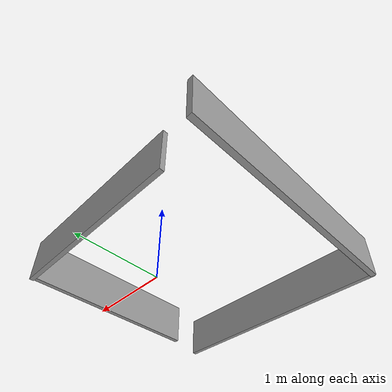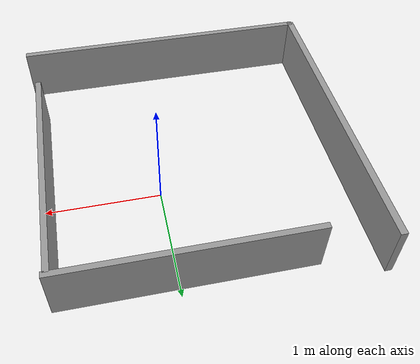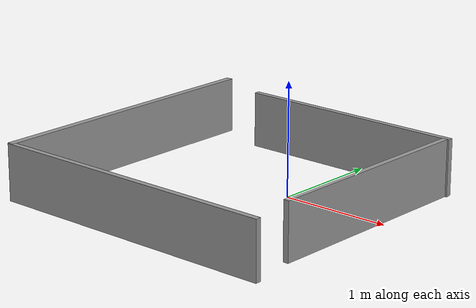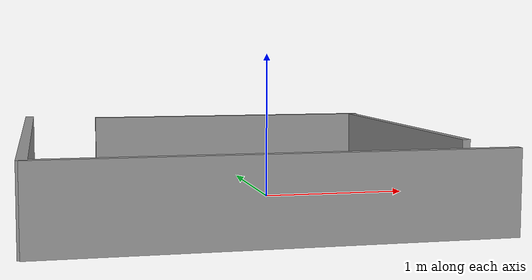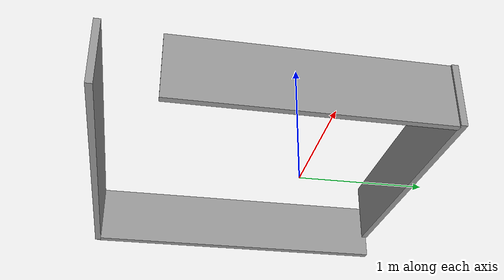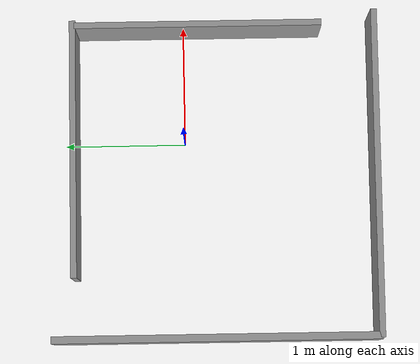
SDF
<?xml version='1.0'?>
<sdf version='1.6'>
  <model name='tunnel_wall_waffle'>
    <link name='Wall_12'>
      <pose frame=''>-1.63568 -0.243892 0 0 -0 1.5708</pose>
      <inertial>
        <inertia>
          <ixx>nan</ixx>
          <ixy>0</ixy>
          <ixz>0</ixz>
          <iyy>nan</iyy>
          <iyz>0</iyz>
          <izz>nan</izz>
        </inertia>
        <mass>0</mass>
        <pose frame=''>0 0 0 0 -0 0</pose>
      </inertial>
      <self_collide>0</self_collide>
      <kinematic>0</kinematic>
      <visual name='Wall_12_Visual'>
        <pose frame=''>0 0 0.25 0 -0 0</pose>
        <geometry>
          <box>
            <size>2.68372 0.060546 0.5</size>
          </box>
        </geometry>
        <material>
          <script>
            <uri>file://media/materials/scripts/gazebo.material</uri>
            <name>Gazebo/Grey</name>
          </script>
          <ambient>1 1 1 1</ambient>
          <diffuse>0.7 0.7 0.7 1</diffuse>
          <specular>0.01 0.01 0.01 1</specular>
          <emissive>0 0 0 1</emissive>
        </material>
        <cast_shadows>1</cast_shadows>
        <transparency>0</transparency>
      </visual>
      <collision name='Wall_12_Collision'>
        <laser_retro>0</laser_retro>
        <max_contacts>10</max_contacts>
        <pose frame=''>0 0 0.25 0 -0 0</pose>
        <geometry>
          <box>
            <size>2.68372 0.060546 0.5</size>
          </box>
        </geometry>
        <surface>
          <friction>
            <ode>
              <mu>1</mu>
              <mu2>1</mu2>
              <fdir1>0 0 0</fdir1>
              <slip1>0</slip1>
              <slip2>0</slip2>
            </ode>
            <torsional>
              <coefficient>1</coefficient>
              <patch_radius>0</patch_radius>
              <surface_radius>0</surface_radius>
              <use_patch_radius>1</use_patch_radius>
              <ode>
                <slip>0</slip>
              </ode>
            </torsional>
          </friction>
          <bounce>
            <restitution_coefficient>0</restitution_coefficient>
            <threshold>1e+06</threshold>
          </bounce>
          <contact>
            <collide_without_contact>0</collide_without_contact>
            <collide_without_contact_bitmask>1</collide_without_contact_bitmask>
            <collide_bitmask>1</collide_bitmask>
            <ode>
              <soft_cfm>0</soft_cfm>
              <soft_erp>0.2</soft_erp>
              <kp>1e+13</kp>
              <kd>1</kd>
              <max_vel>0.01</max_vel>
              <min_depth>0</min_depth>
            </ode>
            <bullet>
              <split_impulse>1</split_impulse>
              <split_impulse_penetration_threshold>-0.01</split_impulse_penetration_threshold>
              <soft_cfm>0</soft_cfm>
              <soft_erp>0.2</soft_erp>
              <kp>1e+13</kp>
              <kd>1</kd>
            </bullet>
          </contact>
        </surface>
      </collision>
    </link>
    <link name='Wall_14'>
      <pose frame=''>-0.304035 -1.57485 0 0 -0 0</pose>
      <inertial>
        <inertia>
          <ixx>nan</ixx>
          <ixy>0</ixy>
          <ixz>0</ixz>
          <iyy>nan</iyy>
          <iyz>0</iyz>
          <izz>nan</izz>
        </inertia>
        <mass>0</mass>
        <pose frame=''>0 0 0 0 -0 0</pose>
      </inertial>
      <self_collide>0</self_collide>
      <kinematic>0</kinematic>
      <visual name='Wall_14_Visual'>
        <pose frame=''>0 0 0.25 0 -0 0</pose>
        <geometry>
          <box>
            <size>2.69628 0.05 0.5</size>
          </box>
        </geometry>
        <material>
          <script>
            <uri>file://media/materials/scripts/gazebo.material</uri>
            <name>Gazebo/Grey</name>
          </script>
          <ambient>1 1 1 1</ambient>
          <diffuse>0.7 0.7 0.7 1</diffuse>
          <specular>0.01 0.01 0.01 1</specular>
          <emissive>0 0 0 1</emissive>
        </material>
        <cast_shadows>1</cast_shadows>
        <transparency>0</transparency>
      </visual>
      <collision name='Wall_14_Collision'>
        <laser_retro>0</laser_retro>
        <max_contacts>10</max_contacts>
        <pose frame=''>0 0 0.25 0 -0 0</pose>
        <geometry>
          <box>
            <size>2.69628 0.05 0.5</size>
          </box>
        </geometry>
        <surface>
          <friction>
            <ode>
              <mu>1</mu>
              <mu2>1</mu2>
              <fdir1>0 0 0</fdir1>
              <slip1>0</slip1>
              <slip2>0</slip2>
            </ode>
            <torsional>
              <coefficient>1</coefficient>
              <patch_radius>0</patch_radius>
              <surface_radius>0</surface_radius>
              <use_patch_radius>1</use_patch_radius>
              <ode>
                <slip>0</slip>
              </ode>
            </torsional>
          </friction>
          <bounce>
            <restitution_coefficient>0</restitution_coefficient>
            <threshold>1e+06</threshold>
          </bounce>
          <contact>
            <collide_without_contact>0</collide_without_contact>
            <collide_without_contact_bitmask>1</collide_without_contact_bitmask>
            <collide_bitmask>1</collide_bitmask>
            <ode>
              <soft_cfm>0</soft_cfm>
              <soft_erp>0.2</soft_erp>
              <kp>1e+13</kp>
              <kd>1</kd>
              <max_vel>0.01</max_vel>
              <min_depth>0</min_depth>
            </ode>
            <bullet>
              <split_impulse>1</split_impulse>
              <split_impulse_penetration_threshold>-0.01</split_impulse_penetration_threshold>
              <soft_cfm>0</soft_cfm>
              <soft_erp>0.2</soft_erp>
              <kp>1e+13</kp>
              <kd>1</kd>
            </bullet>
          </contact>
        </surface>
      </collision>
    </link>
    <link name='Wall_16'>
      <pose frame=''>0.940299 -0.123395 0 0 -0 1.5708</pose>
      <inertial>
        <inertia>
          <ixx>nan</ixx>
          <ixy>0</ixy>
          <ixz>0</ixz>
          <iyy>nan</iyy>
          <iyz>0</iyz>
          <izz>nan</izz>
        </inertia>
        <mass>0</mass>
        <pose frame=''>0 0 0 0 -0 0</pose>
      </inertial>
      <self_collide>0</self_collide>
      <kinematic>0</kinematic>
      <visual name='Wall_16_Visual'>
        <pose frame=''>0 0 0.25 0 -0 0</pose>
        <geometry>
          <box>
            <size>2.0384 0.05 0.5</size>
          </box>
        </geometry>
        <material>
          <script>
            <uri>file://media/materials/scripts/gazebo.material</uri>
            <name>Gazebo/Grey</name>
          </script>
          <ambient>1 1 1 1</ambient>
          <diffuse>0.7 0.7 0.7 1</diffuse>
          <specular>0.01 0.01 0.01 1</specular>
          <emissive>0 0 0 1</emissive>
        </material>
        <cast_shadows>1</cast_shadows>
        <transparency>0</transparency>
      </visual>
      <collision name='Wall_16_Collision'>
        <laser_retro>0</laser_retro>
        <max_contacts>10</max_contacts>
        <pose frame=''>0 0 0.25 0 -0 0</pose>
        <geometry>
          <box>
            <size>2.0384 0.05 0.5</size>
          </box>
        </geometry>
        <surface>
          <friction>
            <ode>
              <mu>1</mu>
              <mu2>1</mu2>
              <fdir1>0 0 0</fdir1>
              <slip1>0</slip1>
              <slip2>0</slip2>
            </ode>
            <torsional>
              <coefficient>1</coefficient>
              <patch_radius>0</patch_radius>
              <surface_radius>0</surface_radius>
              <use_patch_radius>1</use_patch_radius>
              <ode>
                <slip>0</slip>
              </ode>
            </torsional>
          </friction>
          <bounce>
            <restitution_coefficient>0</restitution_coefficient>
            <threshold>1e+06</threshold>
          </bounce>
          <contact>
            <collide_without_contact>0</collide_without_contact>
            <collide_without_contact_bitmask>1</collide_without_contact_bitmask>
            <collide_bitmask>1</collide_bitmask>
            <ode>
              <soft_cfm>0</soft_cfm>
              <soft_erp>0.2</soft_erp>
              <kp>1e+13</kp>
              <kd>1</kd>
              <max_vel>0.01</max_vel>
              <min_depth>0</min_depth>
            </ode>
            <bullet>
              <split_impulse>1</split_impulse>
              <split_impulse_penetration_threshold>-0.01</split_impulse_penetration_threshold>
              <soft_cfm>0</soft_cfm>
              <soft_erp>0.2</soft_erp>
              <kp>1e+13</kp>
              <kd>1</kd>
            </bullet>
          </contact>
        </surface>
      </collision>
    </link>
    <link name='Wall_17'>
      <pose frame=''>-0.077985 0.91208 0 0 -0 3.14159</pose>
      <inertial>
        <inertia>
          <ixx>nan</ixx>
          <ixy>0</ixy>
          <ixz>0</ixz>
          <iyy>nan</iyy>
          <iyz>0</iyz>
          <izz>nan</izz>
        </inertia>
        <mass>0</mass>
        <pose frame=''>0 0 0 0 -0 0</pose>
      </inertial>
      <self_collide>0</self_collide>
      <kinematic>0</kinematic>
      <visual name='Wall_17_Visual'>
        <pose frame=''>0 0 0.25 0 -0 0</pose>
        <geometry>
          <box>
            <size>2.11793 0.05 0.5</size>
          </box>
        </geometry>
        <material>
          <script>
            <uri>file://media/materials/scripts/gazebo.material</uri>
            <name>Gazebo/Grey</name>
          </script>
          <ambient>1 1 1 1</ambient>
          <diffuse>0.7 0.7 0.7 1</diffuse>
          <specular>0.01 0.01 0.01 1</specular>
          <emissive>0 0 0 1</emissive>
        </material>
        <cast_shadows>1</cast_shadows>
        <transparency>0</transparency>
      </visual>
      <collision name='Wall_17_Collision'>
        <laser_retro>0</laser_retro>
        <max_contacts>10</max_contacts>
        <pose frame=''>0 0 0.25 0 -0 0</pose>
        <geometry>
          <box>
            <size>2.11793 0.05 0.5</size>
          </box>
        </geometry>
        <surface>
          <friction>
            <ode>
              <mu>1</mu>
              <mu2>1</mu2>
              <fdir1>0 0 0</fdir1>
              <slip1>0</slip1>
              <slip2>0</slip2>
            </ode>
            <torsional>
              <coefficient>1</coefficient>
              <patch_radius>0</patch_radius>
              <surface_radius>0</surface_radius>
              <use_patch_radius>1</use_patch_radius>
              <ode>
                <slip>0</slip>
              </ode>
            </torsional>
          </friction>
          <bounce>
            <restitution_coefficient>0</restitution_coefficient>
            <threshold>1e+06</threshold>
          </bounce>
          <contact>
            <collide_without_contact>0</collide_without_contact>
            <collide_without_contact_bitmask>1</collide_without_contact_bitmask>
            <collide_bitmask>1</collide_bitmask>
            <ode>
              <soft_cfm>0</soft_cfm>
              <soft_erp>0.2</soft_erp>
              <kp>1e+13</kp>
              <kd>1</kd>
              <max_vel>0.01</max_vel>
              <min_depth>0</min_depth>
            </ode>
            <bullet>
              <split_impulse>1</split_impulse>
              <split_impulse_penetration_threshold>-0.01</split_impulse_penetration_threshold>
              <soft_cfm>0</soft_cfm>
              <soft_erp>0.2</soft_erp>
              <kp>1e+13</kp>
              <kd>1</kd>
            </bullet>
          </contact>
        </surface>
      </collision>
    </link>
    <static>1</static>
    <allow_auto_disable>1</allow_auto_disable>
  </model>
</sdf>
